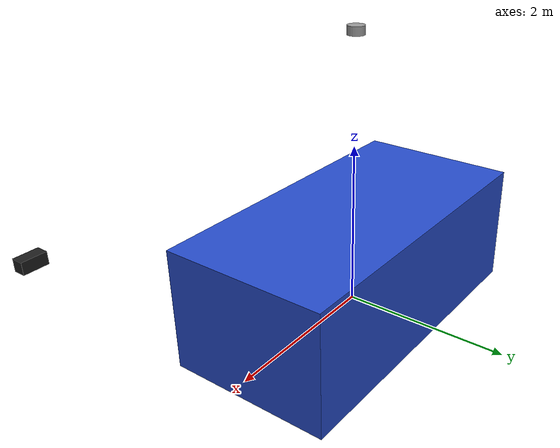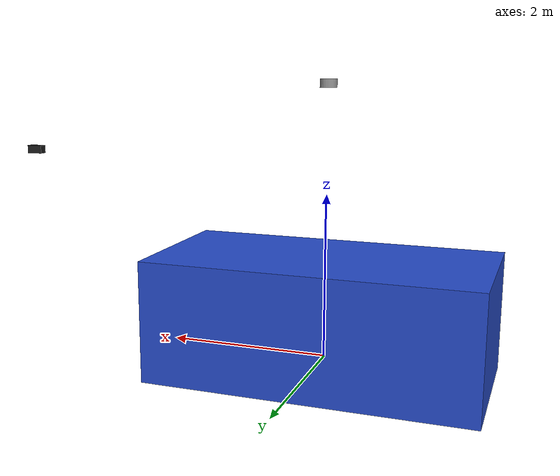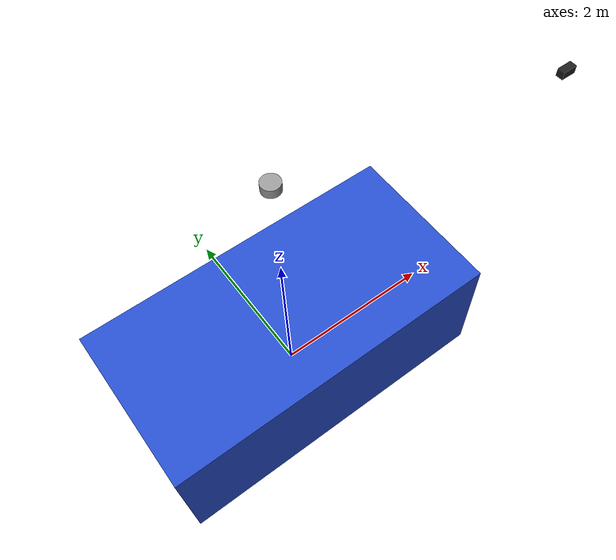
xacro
<?xml version="1.0"?>
<robot name="ego_vehicle" xmlns:xacro="http://www.ros.org/wiki/xacro">

  <!-- Base link -->
  <link name="base_link">
    <inertial>
      <mass value="1200"/> <!-- fake mass -->
      <origin xyz="0 0 0" rpy="0 0 0"/>
      <inertia ixx="1" ixy="0" ixz="0" iyy="1" iyz="0" izz="1"/>
    </inertial>

    <visual>
      <origin xyz="0 0 0.5" rpy="0 0 0"/>
      <geometry>
        <box size="4 2 1.5"/>
      </geometry>
      <material name="blue"/>
    </visual>

    <collision>
      <origin xyz="0 0 0.5" rpy="0 0 0"/>
      <geometry>
        <box size="4 2 1.5"/>
      </geometry>
    </collision>
  </link>

  <!-- LiDAR link (2D planar LiDAR) -->
  <link name="lidar_link">
    <visual>
      <origin xyz="0 0 1.8" rpy="0 0 0"/>
      <geometry>
        <cylinder length="0.1" radius="0.1"/>
      </geometry>
      <material name="gray"/>
    </visual>
  </link>

  <joint name="lidar_joint" type="fixed">
    <parent link="base_link"/>
    <child link="lidar_link"/>
    <origin xyz="0 0 1.5" rpy="0 0 0"/>
  </joint>

  <!-- Camera link -->
  <link name="camera_link">
    <visual>
      <origin xyz="2 0 1.2" rpy="0 0 0"/>
      <geometry>
        <box size="0.2 0.1 0.1"/>
      </geometry>
      <material name="black"/>
    </visual>
  </link>

  <joint name="camera_joint" type="fixed">
    <parent link="base_link"/>
    <child link="camera_link"/>
    <origin xyz="2 0 1.2" rpy="0 0 0"/>
  </joint>

  <!-- Gazebo-specific plugins (controllers etc.) -->
  <gazebo>
    <plugin name="gazebo_ros_control" filename="libgazebo_ros_control.so"/>
  </gazebo>

   <!-- =============== FIXED WORKING 2D LiDAR (LaserScan) =============== -->
  <gazebo reference="lidar_link">
    <sensor name="lidar_sensor" type="ray">
      <always_on>true</always_on>
      <visualize>true</visualize>
      <update_rate>20</update_rate>

      <ray>
        <scan>
          <horizontal>
            <samples>360</samples>
            <min_angle>-1.57</min_angle>
            <max_angle>1.57</max_angle>
          </horizontal>
        </scan>
        <range>
          <min>0.2</min>
          <max>30.0</max>
          <resolution>0.01</resolution>
        </range>
      </ray>

      <plugin name="lidar_controller" filename="libgazebo_ros_ray_sensor.so">
        <ros>
          <namespace>ego</namespace>
          <remapping>~/out:=lidar/scan</remapping>
        </ros>

        <output_type>sensor_msgs/LaserScan</output_type>

        <frame_name>lidar_link</frame_name>
      </plugin>

    </sensor>
  </gazebo>
  <!-- ================= Camera sensor ================= -->
  <gazebo reference="camera_link">
    <sensor name="front_camera" type="camera">
      <pose>0 0 0 0 0 0</pose>
      <always_on>true</always_on>
      <update_rate>10</update_rate>

      <camera>
        <horizontal_fov>1.3962634</horizontal_fov>
        <image>
          <width>640</width>
          <height>480</height>
          <format>R8G8B8</format>
        </image>
        <clip>
          <near>0.1</near>
          <far>100.0</far>
        </clip>
      </camera>

      <plugin name="gazebo_ros_camera" filename="libgazebo_ros_camera.so">
        <ros>
          <!-- no leading slash -->
          <namespace>ego</namespace>
        </ros>
        <frame_name>camera_link</frame_name>
        <camera_name>front</camera_name>
        <image_topic_name>camera_front/image_raw</image_topic_name>
        <camera_info_topic_name>camera_front/camera_info</camera_info_topic_name>
      </plugin>
    </sensor>
  </gazebo>

</robot>
